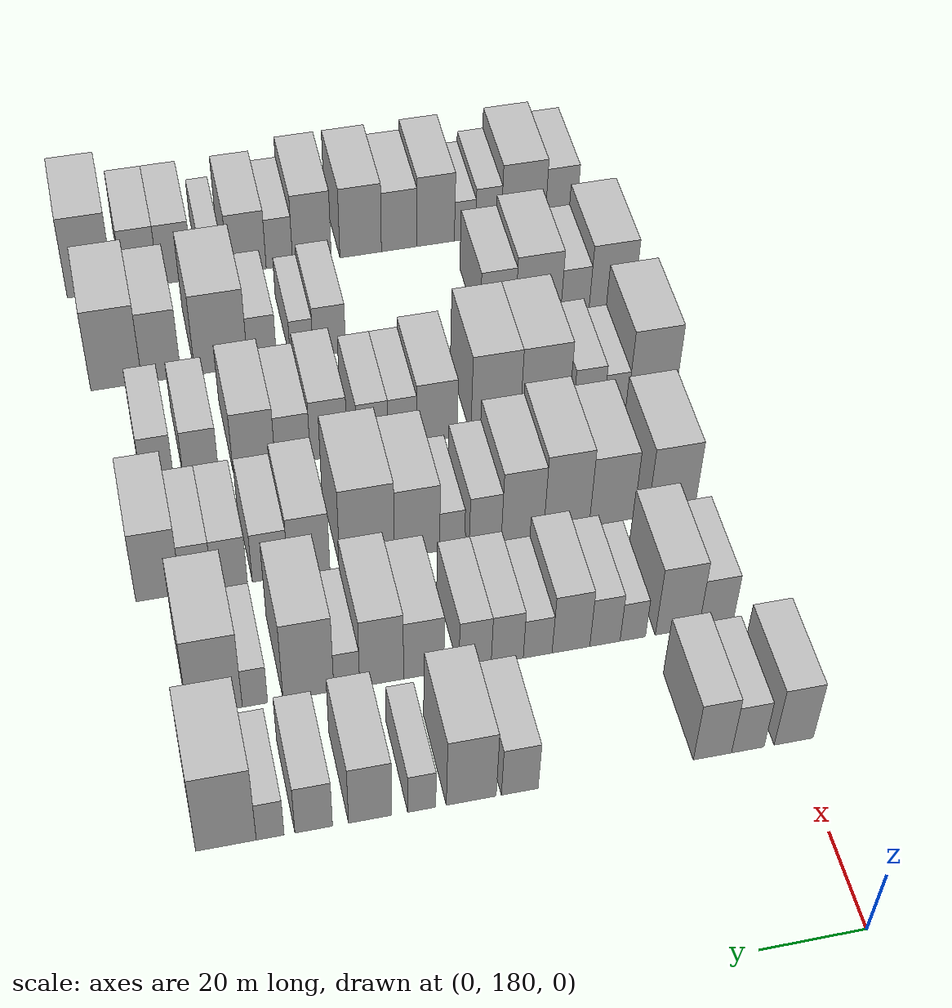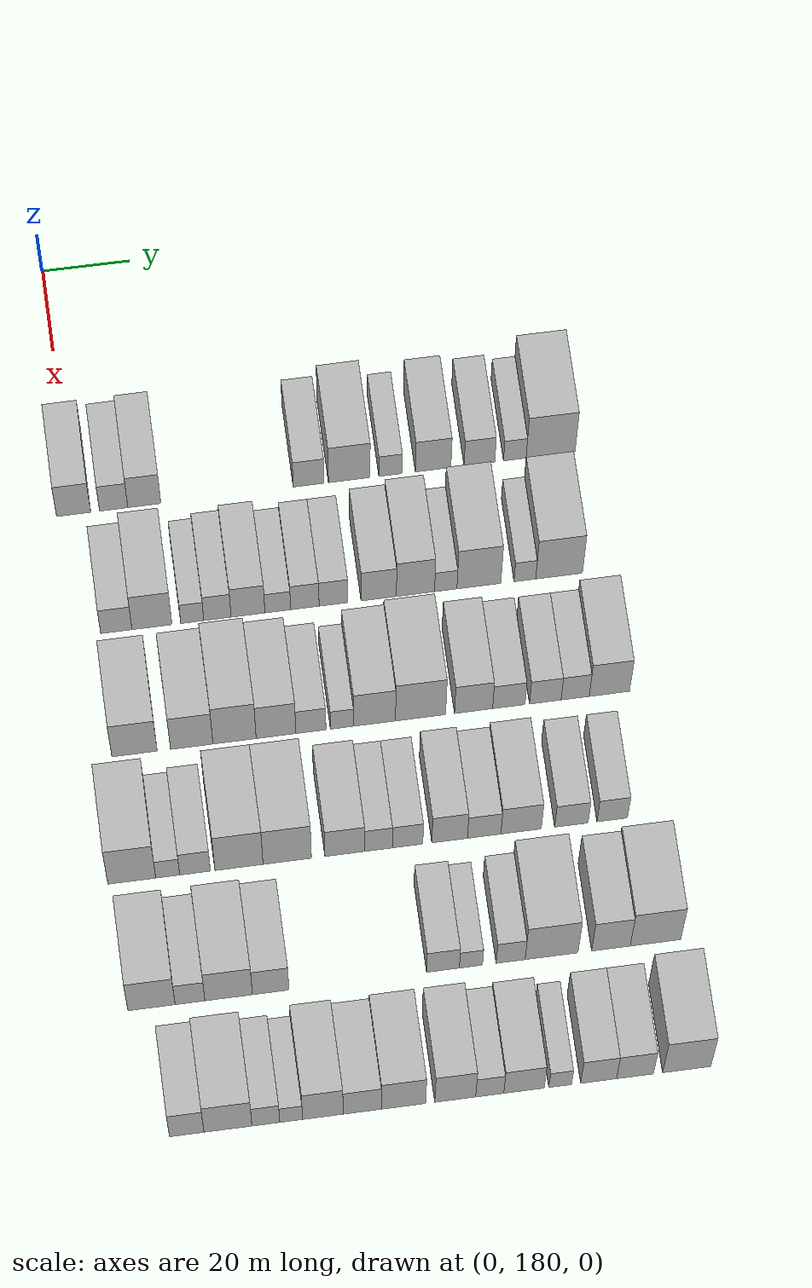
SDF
<sdf version="1.6">
 <world name="default">
  <model name="building_70">
   <static>1</static>
   <pose>50.0000 180.2562 0 0.000000 0.000000 0.000000</pose>
   <link name="link">
    <pose>0 0 9.00 0 0 0</pose>
    <collision name="collision"><geometry><box><size>20.0000 7.7095 18.0000</size></box></geometry></collision>
    <visual name="visual">
     <cast_shadows>0</cast_shadows>
     <geometry><box><size>20.0000 7.7095 18.0000</size></box></geometry>
     <material>
      <script>
       <uri>model://HANNAS_wall/materials/scripts</uri>
       <uri>model://HANNAS_wall/materials/textures</uri>
       <name>vrc/HANNAS_wall</name>
      </script>
     </material>
    </visual>
   </link>
  </model>
  <model name="building_71">
   <static>1</static>
   <pose>50.0000 189.3068 0 0.000000 0.000000 0.000000</pose>
   <link name="link">
    <pose>0 0 7.50 0 0 0</pose>
    <collision name="collision"><geometry><box><size>20.0000 6.3916 15.0000</size></box></geometry></collision>
    <visual name="visual">
     <cast_shadows>0</cast_shadows>
     <geometry><box><size>20.0000 6.3916 15.0000</size></box></geometry>
     <material>
      <script>
       <uri>model://HANNAS_wall/materials/scripts</uri>
       <uri>model://HANNAS_wall/materials/textures</uri>
       <name>vrc/HANNAS_wall</name>
      </script>
     </material>
    </visual>
   </link>
  </model>
  <model name="building_72">
   <static>1</static>
   <pose>50.0000 196.2367 0 0.000000 0.000000 0.000000</pose>
   <link name="link">
    <pose>0 0 9.00 0 0 0</pose>
    <collision name="collision"><geometry><box><size>20.0000 7.4682 18.0000</size></box></geometry></collision>
    <visual name="visual">
     <cast_shadows>0</cast_shadows>
     <geometry><box><size>20.0000 7.4682 18.0000</size></box></geometry>
     <material>
      <script>
       <uri>model://HANNAS_wall/materials/scripts</uri>
       <uri>model://HANNAS_wall/materials/textures</uri>
       <name>vrc/HANNAS_wall</name>
      </script>
     </material>
    </visual>
   </link>
  </model>
  <model name="building_73">
   <static>1</static>
   <pose>50.0000 233.4830 0 0.000000 0.000000 0.000000</pose>
   <link name="link">
    <pose>0 0 7.50 0 0 0</pose>
    <collision name="collision"><geometry><box><size>20.0000 7.0081 15.0000</size></box></geometry></collision>
    <visual name="visual">
     <cast_shadows>0</cast_shadows>
     <geometry><box><size>20.0000 7.0081 15.0000</size></box></geometry>
     <material>
      <script>
       <uri>model://HANNAS_wall/materials/scripts</uri>
       <uri>model://HANNAS_wall/materials/textures</uri>
       <name>vrc/HANNAS_wall</name>
      </script>
     </material>
    </visual>
   </link>
  </model>
  <model name="building_74">
   <static>1</static>
   <pose>50.0000 242.7147 0 0.000000 0.000000 0.000000</pose>
   <link name="link">
    <pose>0 0 10.50 0 0 0</pose>
    <collision name="collision"><geometry><box><size>20.0000 9.4552 21.0000</size></box></geometry></collision>
    <visual name="visual">
     <cast_shadows>0</cast_shadows>
     <geometry><box><size>20.0000 9.4552 21.0000</size></box></geometry>
     <material>
      <script>
       <uri>model://HANNAS_wall/materials/scripts</uri>
       <uri>model://HANNAS_wall/materials/textures</uri>
       <name>vrc/HANNAS_wall</name>
      </script>
     </material>
    </visual>
   </link>
  </model>
  <model name="building_75">
   <static>1</static>
   <pose>50.0000 252.0832 0 0.000000 0.000000 0.000000</pose>
   <link name="link">
    <pose>0 0 6.00 0 0 0</pose>
    <collision name="collision"><geometry><box><size>20.0000 5.2818 12.0000</size></box></geometry></collision>
    <visual name="visual">
     <cast_shadows>0</cast_shadows>
     <geometry><box><size>20.0000 5.2818 12.0000</size></box></geometry>
     <material>
      <script>
       <uri>model://HANNAS_wall/materials/scripts</uri>
       <uri>model://HANNAS_wall/materials/textures</uri>
       <name>vrc/HANNAS_wall</name>
      </script>
     </material>
    </visual>
   </link>
  </model>
  <model name="building_76">
   <static>1</static>
   <pose>50.0000 261.7618 0 0.000000 0.000000 0.000000</pose>
   <link name="link">
    <pose>0 0 9.00 0 0 0</pose>
    <collision name="collision"><geometry><box><size>20.0000 8.0754 18.0000</size></box></geometry></collision>
    <visual name="visual">
     <cast_shadows>0</cast_shadows>
     <geometry><box><size>20.0000 8.0754 18.0000</size></box></geometry>
     <material>
      <script>
       <uri>model://HANNAS_wall/materials/scripts</uri>
       <uri>model://HANNAS_wall/materials/textures</uri>
       <name>vrc/HANNAS_wall</name>
      </script>
     </material>
    </visual>
   </link>
  </model>
  <model name="building_77">
   <static>1</static>
   <pose>50.0000 272.2956 0 0.000000 0.000000 0.000000</pose>
   <link name="link">
    <pose>0 0 7.50 0 0 0</pose>
    <collision name="collision"><geometry><box><size>20.0000 6.9923 15.0000</size></box></geometry></collision>
    <visual name="visual">
     <cast_shadows>0</cast_shadows>
     <geometry><box><size>20.0000 6.9923 15.0000</size></box></geometry>
     <material>
      <script>
       <uri>model://HANNAS_wall/materials/scripts</uri>
       <uri>model://HANNAS_wall/materials/textures</uri>
       <name>vrc/HANNAS_wall</name>
      </script>
     </material>
    </visual>
   </link>
  </model>
  <model name="building_78">
   <static>1</static>
   <pose>50.0000 280.3612 0 0.000000 0.000000 0.000000</pose>
   <link name="link">
    <pose>0 0 6.00 0 0 0</pose>
    <collision name="collision"><geometry><box><size>20.0000 5.1389 12.0000</size></box></geometry></collision>
    <visual name="visual">
     <cast_shadows>0</cast_shadows>
     <geometry><box><size>20.0000 5.1389 12.0000</size></box></geometry>
     <material>
      <script>
       <uri>model://HANNAS_wall/materials/scripts</uri>
       <uri>model://HANNAS_wall/materials/textures</uri>
       <name>vrc/HANNAS_wall</name>
      </script>
     </material>
    </visual>
   </link>
  </model>
  <model name="building_79">
   <static>1</static>
   <pose>50.0000 288.5059 0 0.000000 0.000000 0.000000</pose>
   <link name="link">
    <pose>0 0 12.00 0 0 0</pose>
    <collision name="collision"><geometry><box><size>20.0000 11.1505 24.0000</size></box></geometry></collision>
    <visual name="visual">
     <cast_shadows>0</cast_shadows>
     <geometry><box><size>20.0000 11.1505 24.0000</size></box></geometry>
     <material>
      <script>
       <uri>model://HANNAS_wall/materials/scripts</uri>
       <uri>model://HANNAS_wall/materials/textures</uri>
       <name>vrc/HANNAS_wall</name>
      </script>
     </material>
    </visual>
   </link>
  </model>
  <model name="building_181">
   <static>1</static>
   <pose>79.0000 186.5486 0 0.000000 0.000000 0.000000</pose>
   <link name="link">
    <pose>0 0 7.50 0 0 0</pose>
    <collision name="collision"><geometry><box><size>20.0000 7.0161 15.0000</size></box></geometry></collision>
    <visual name="visual">
     <cast_shadows>0</cast_shadows>
     <geometry><box><size>20.0000 7.0161 15.0000</size></box></geometry>
     <material>
      <script>
       <uri>model://HANNAS_wall/materials/scripts</uri>
       <uri>model://HANNAS_wall/materials/textures</uri>
       <name>vrc/HANNAS_wall</name>
      </script>
     </material>
    </visual>
   </link>
  </model>
  <model name="building_182">
   <static>1</static>
   <pose>79.0000 194.5287 0 0.000000 0.000000 0.000000</pose>
   <link name="link">
    <pose>0 0 10.50 0 0 0</pose>
    <collision name="collision"><geometry><box><size>20.0000 8.9441 21.0000</size></box></geometry></collision>
    <visual name="visual">
     <cast_shadows>0</cast_shadows>
     <geometry><box><size>20.0000 8.9441 21.0000</size></box></geometry>
     <material>
      <script>
       <uri>model://HANNAS_wall/materials/scripts</uri>
       <uri>model://HANNAS_wall/materials/textures</uri>
       <name>vrc/HANNAS_wall</name>
      </script>
     </material>
    </visual>
   </link>
  </model>
  <model name="building_183">
   <static>1</static>
   <pose>79.0000 203.5871 0 0.000000 0.000000 0.000000</pose>
   <link name="link">
    <pose>0 0 6.00 0 0 0</pose>
    <collision name="collision"><geometry><box><size>20.0000 5.1728 12.0000</size></box></geometry></collision>
    <visual name="visual">
     <cast_shadows>0</cast_shadows>
     <geometry><box><size>20.0000 5.1728 12.0000</size></box></geometry>
     <material>
      <script>
       <uri>model://HANNAS_wall/materials/scripts</uri>
       <uri>model://HANNAS_wall/materials/textures</uri>
       <name>vrc/HANNAS_wall</name>
      </script>
     </material>
    </visual>
   </link>
  </model>
  <model name="building_184">
   <static>1</static>
   <pose>79.0000 209.2346 0 0.000000 0.000000 0.000000</pose>
   <link name="link">
    <pose>0 0 7.50 0 0 0</pose>
    <collision name="collision"><geometry><box><size>20.0000 6.1221 15.0000</size></box></geometry></collision>
    <visual name="visual">
     <cast_shadows>0</cast_shadows>
     <geometry><box><size>20.0000 6.1221 15.0000</size></box></geometry>
     <material>
      <script>
       <uri>model://HANNAS_wall/materials/scripts</uri>
       <uri>model://HANNAS_wall/materials/textures</uri>
       <name>vrc/HANNAS_wall</name>
      </script>
     </material>
    </visual>
   </link>
  </model>
  <model name="building_185">
   <static>1</static>
   <pose>79.0000 216.0967 0 0.000000 0.000000 0.000000</pose>
   <link name="link">
    <pose>0 0 9.00 0 0 0</pose>
    <collision name="collision"><geometry><box><size>20.0000 7.6021 18.0000</size></box></geometry></collision>
    <visual name="visual">
     <cast_shadows>0</cast_shadows>
     <geometry><box><size>20.0000 7.6021 18.0000</size></box></geometry>
     <material>
      <script>
       <uri>model://HANNAS_wall/materials/scripts</uri>
       <uri>model://HANNAS_wall/materials/textures</uri>
       <name>vrc/HANNAS_wall</name>
      </script>
     </material>
    </visual>
   </link>
  </model>
  <model name="building_186">
   <static>1</static>
   <pose>79.0000 222.7918 0 0.000000 0.000000 0.000000</pose>
   <link name="link">
    <pose>0 0 6.00 0 0 0</pose>
    <collision name="collision"><geometry><box><size>20.0000 5.7882 12.0000</size></box></geometry></collision>
    <visual name="visual">
     <cast_shadows>0</cast_shadows>
     <geometry><box><size>20.0000 5.7882 12.0000</size></box></geometry>
     <material>
      <script>
       <uri>model://HANNAS_wall/materials/scripts</uri>
       <uri>model://HANNAS_wall/materials/textures</uri>
       <name>vrc/HANNAS_wall</name>
      </script>
     </material>
    </visual>
   </link>
  </model>
  <model name="building_187">
   <static>1</static>
   <pose>79.0000 228.8914 0 0.000000 0.000000 0.000000</pose>
   <link name="link">
    <pose>0 0 7.50 0 0 0</pose>
    <collision name="collision"><geometry><box><size>20.0000 6.4110 15.0000</size></box></geometry></collision>
    <visual name="visual">
     <cast_shadows>0</cast_shadows>
     <geometry><box><size>20.0000 6.4110 15.0000</size></box></geometry>
     <material>
      <script>
       <uri>model://HANNAS_wall/materials/scripts</uri>
       <uri>model://HANNAS_wall/materials/textures</uri>
       <name>vrc/HANNAS_wall</name>
      </script>
     </material>
    </visual>
   </link>
  </model>
  <model name="building_188">
   <static>1</static>
   <pose>79.0000 235.3217 0 0.000000 0.000000 0.000000</pose>
   <link name="link">
    <pose>0 0 7.50 0 0 0</pose>
    <collision name="collision"><geometry><box><size>20.0000 6.4496 15.0000</size></box></geometry></collision>
    <visual name="visual">
     <cast_shadows>0</cast_shadows>
     <geometry><box><size>20.0000 6.4496 15.0000</size></box></geometry>
     <material>
      <script>
       <uri>model://HANNAS_wall/materials/scripts</uri>
       <uri>model://HANNAS_wall/materials/textures</uri>
       <name>vrc/HANNAS_wall</name>
      </script>
     </material>
    </visual>
   </link>
  </model>
  <model name="building_189">
   <static>1</static>
   <pose>79.0000 245.5185 0 0.000000 0.000000 0.000000</pose>
   <link name="link">
    <pose>0 0 9.00 0 0 0</pose>
    <collision name="collision"><geometry><box><size>20.0000 7.9440 18.0000</size></box></geometry></collision>
    <visual name="visual">
     <cast_shadows>0</cast_shadows>
     <geometry><box><size>20.0000 7.9440 18.0000</size></box></geometry>
     <material>
      <script>
       <uri>model://HANNAS_wall/materials/scripts</uri>
       <uri>model://HANNAS_wall/materials/textures</uri>
       <name>vrc/HANNAS_wall</name>
      </script>
     </material>
    </visual>
   </link>
  </model>
  <model name="building_190">
   <static>1</static>
   <pose>79.0000 253.7949 0 0.000000 0.000000 0.000000</pose>
   <link name="link">
    <pose>0 0 10.50 0 0 0</pose>
    <collision name="collision"><geometry><box><size>20.0000 8.6087 21.0000</size></box></geometry></collision>
    <visual name="visual">
     <cast_shadows>0</cast_shadows>
     <geometry><box><size>20.0000 8.6087 21.0000</size></box></geometry>
     <material>
      <script>
       <uri>model://HANNAS_wall/materials/scripts</uri>
       <uri>model://HANNAS_wall/materials/textures</uri>
       <name>vrc/HANNAS_wall</name>
      </script>
     </material>
    </visual>
   </link>
  </model>
  <model name="building_191">
   <static>1</static>
   <pose>79.0000 260.6229 0 0.000000 0.000000 0.000000</pose>
   <link name="link">
    <pose>0 0 6.00 0 0 0</pose>
    <collision name="collision"><geometry><box><size>20.0000 5.0473 12.0000</size></box></geometry></collision>
    <visual name="visual">
     <cast_shadows>0</cast_shadows>
     <geometry><box><size>20.0000 5.0473 12.0000</size></box></geometry>
     <material>
      <script>
       <uri>model://HANNAS_wall/materials/scripts</uri>
       <uri>model://HANNAS_wall/materials/textures</uri>
       <name>vrc/HANNAS_wall</name>
      </script>
     </material>
    </visual>
   </link>
  </model>
  <model name="building_192">
   <static>1</static>
   <pose>79.0000 268.0905 0 0.000000 0.000000 0.000000</pose>
   <link name="link">
    <pose>0 0 12.00 0 0 0</pose>
    <collision name="collision"><geometry><box><size>20.0000 9.8880 24.0000</size></box></geometry></collision>
    <visual name="visual">
     <cast_shadows>0</cast_shadows>
     <geometry><box><size>20.0000 9.8880 24.0000</size></box></geometry>
     <material>
      <script>
       <uri>model://HANNAS_wall/materials/scripts</uri>
       <uri>model://HANNAS_wall/materials/textures</uri>
       <name>vrc/HANNAS_wall</name>
      </script>
     </material>
    </visual>
   </link>
  </model>
  <model name="building_193">
   <static>1</static>
   <pose>79.0000 278.4834 0 0.000000 0.000000 0.000000</pose>
   <link name="link">
    <pose>0 0 6.00 0 0 0</pose>
    <collision name="collision"><geometry><box><size>20.0000 4.8978 12.0000</size></box></geometry></collision>
    <visual name="visual">
     <cast_shadows>0</cast_shadows>
     <geometry><box><size>20.0000 4.8978 12.0000</size></box></geometry>
     <material>
      <script>
       <uri>model://HANNAS_wall/materials/scripts</uri>
       <uri>model://HANNAS_wall/materials/textures</uri>
       <name>vrc/HANNAS_wall</name>
      </script>
     </material>
    </visual>
   </link>
  </model>
  <model name="building_194">
   <static>1</static>
   <pose>79.0000 286.2061 0 0.000000 0.000000 0.000000</pose>
   <link name="link">
    <pose>0 0 12.00 0 0 0</pose>
    <collision name="collision"><geometry><box><size>20.0000 10.5475 24.0000</size></box></geometry></collision>
    <visual name="visual">
     <cast_shadows>0</cast_shadows>
     <geometry><box><size>20.0000 10.5475 24.0000</size></box></geometry>
     <material>
      <script>
       <uri>model://HANNAS_wall/materials/scripts</uri>
       <uri>model://HANNAS_wall/materials/textures</uri>
       <name>vrc/HANNAS_wall</name>
      </script>
     </material>
    </visual>
   </link>
  </model>
  <model name="building_300">
   <static>1</static>
   <pose>108.0000 187.2065 0 0.000000 0.000000 0.000000</pose>
   <link name="link">
    <pose>0 0 10.50 0 0 0</pose>
    <collision name="collision"><geometry><box><size>20.0000 10.0600 21.0000</size></box></geometry></collision>
    <visual name="visual">
     <cast_shadows>0</cast_shadows>
     <geometry><box><size>20.0000 10.0600 21.0000</size></box></geometry>
     <material>
      <script>
       <uri>model://HANNAS_wall/materials/scripts</uri>
       <uri>model://HANNAS_wall/materials/textures</uri>
       <name>vrc/HANNAS_wall</name>
      </script>
     </material>
    </visual>
   </link>
  </model>
  <model name="building_301">
   <static>1</static>
   <pose>108.0000 199.9511 0 0.000000 0.000000 0.000000</pose>
   <link name="link">
    <pose>0 0 10.50 0 0 0</pose>
    <collision name="collision"><geometry><box><size>20.0000 9.4292 21.0000</size></box></geometry></collision>
    <visual name="visual">
     <cast_shadows>0</cast_shadows>
     <geometry><box><size>20.0000 9.4292 21.0000</size></box></geometry>
     <material>
      <script>
       <uri>model://HANNAS_wall/materials/scripts</uri>
       <uri>model://HANNAS_wall/materials/textures</uri>
       <name>vrc/HANNAS_wall</name>
      </script>
     </material>
    </visual>
   </link>
  </model>
  <model name="building_302">
   <static>1</static>
   <pose>108.0000 209.4750 0 0.000000 0.000000 0.000000</pose>
   <link name="link">
    <pose>0 0 12.00 0 0 0</pose>
    <collision name="collision"><geometry><box><size>20.0000 9.6187 24.0000</size></box></geometry></collision>
    <visual name="visual">
     <cast_shadows>0</cast_shadows>
     <geometry><box><size>20.0000 9.6187 24.0000</size></box></geometry>
     <material>
      <script>
       <uri>model://HANNAS_wall/materials/scripts</uri>
       <uri>model://HANNAS_wall/materials/textures</uri>
       <name>vrc/HANNAS_wall</name>
      </script>
     </material>
    </visual>
   </link>
  </model>
  <model name="building_303">
   <static>1</static>
   <pose>108.0000 218.7165 0 0.000000 0.000000 0.000000</pose>
   <link name="link">
    <pose>0 0 10.50 0 0 0</pose>
    <collision name="collision"><geometry><box><size>20.0000 8.8643 21.0000</size></box></geometry></collision>
    <visual name="visual">
     <cast_shadows>0</cast_shadows>
     <geometry><box><size>20.0000 8.8643 21.0000</size></box></geometry>
     <material>
      <script>
       <uri>model://HANNAS_wall/materials/scripts</uri>
       <uri>model://HANNAS_wall/materials/textures</uri>
       <name>vrc/HANNAS_wall</name>
      </script>
     </material>
    </visual>
   </link>
  </model>
  <model name="building_304">
   <static>1</static>
   <pose>108.0000 226.4999 0 0.000000 0.000000 0.000000</pose>
   <link name="link">
    <pose>0 0 7.50 0 0 0</pose>
    <collision name="collision"><geometry><box><size>20.0000 6.7025 15.0000</size></box></geometry></collision>
    <visual name="visual">
     <cast_shadows>0</cast_shadows>
     <geometry><box><size>20.0000 6.7025 15.0000</size></box></geometry>
     <material>
      <script>
       <uri>model://HANNAS_wall/materials/scripts</uri>
       <uri>model://HANNAS_wall/materials/textures</uri>
       <name>vrc/HANNAS_wall</name>
      </script>
     </material>
    </visual>
   </link>
  </model>
  <model name="building_305">
   <static>1</static>
   <pose>108.0000 233.4366 0 0.000000 0.000000 0.000000</pose>
   <link name="link">
    <pose>0 0 6.00 0 0 0</pose>
    <collision name="collision"><geometry><box><size>20.0000 5.1707 12.0000</size></box></geometry></collision>
    <visual name="visual">
     <cast_shadows>0</cast_shadows>
     <geometry><box><size>20.0000 5.1707 12.0000</size></box></geometry>
     <material>
      <script>
       <uri>model://HANNAS_wall/materials/scripts</uri>
       <uri>model://HANNAS_wall/materials/textures</uri>
       <name>vrc/HANNAS_wall</name>
      </script>
     </material>
    </visual>
   </link>
  </model>
  <model name="building_306">
   <static>1</static>
   <pose>108.0000 240.6991 0 0.000000 0.000000 0.000000</pose>
   <link name="link">
    <pose>0 0 10.50 0 0 0</pose>
    <collision name="collision"><geometry><box><size>20.0000 9.3544 21.0000</size></box></geometry></collision>
    <visual name="visual">
     <cast_shadows>0</cast_shadows>
     <geometry><box><size>20.0000 9.3544 21.0000</size></box></geometry>
     <material>
      <script>
       <uri>model://HANNAS_wall/materials/scripts</uri>
       <uri>model://HANNAS_wall/materials/textures</uri>
       <name>vrc/HANNAS_wall</name>
      </script>
     </material>
    </visual>
   </link>
  </model>
  <model name="building_307">
   <static>1</static>
   <pose>108.0000 250.9731 0 0.000000 0.000000 0.000000</pose>
   <link name="link">
    <pose>0 0 12.00 0 0 0</pose>
    <collision name="collision"><geometry><box><size>20.0000 11.1936 24.0000</size></box></geometry></collision>
    <visual name="visual">
     <cast_shadows>0</cast_shadows>
     <geometry><box><size>20.0000 11.1936 24.0000</size></box></geometry>
     <material>
      <script>
       <uri>model://HANNAS_wall/materials/scripts</uri>
       <uri>model://HANNAS_wall/materials/textures</uri>
       <name>vrc/HANNAS_wall</name>
      </script>
     </material>
    </visual>
   </link>
  </model>
  <model name="building_308">
   <static>1</static>
   <pose>108.0000 262.8275 0 0.000000 0.000000 0.000000</pose>
   <link name="link">
    <pose>0 0 9.00 0 0 0</pose>
    <collision name="collision"><geometry><box><size>20.0000 8.5152 18.0000</size></box></geometry></collision>
    <visual name="visual">
     <cast_shadows>0</cast_shadows>
     <geometry><box><size>20.0000 8.5152 18.0000</size></box></geometry>
     <material>
      <script>
       <uri>model://HANNAS_wall/materials/scripts</uri>
       <uri>model://HANNAS_wall/materials/textures</uri>
       <name>vrc/HANNAS_wall</name>
      </script>
     </material>
    </visual>
   </link>
  </model>
  <model name="building_309">
   <static>1</static>
   <pose>108.0000 270.7151 0 0.000000 0.000000 0.000000</pose>
   <link name="link">
    <pose>0 0 7.50 0 0 0</pose>
    <collision name="collision"><geometry><box><size>20.0000 7.2600 15.0000</size></box></geometry></collision>
    <visual name="visual">
     <cast_shadows>0</cast_shadows>
     <geometry><box><size>20.0000 7.2600 15.0000</size></box></geometry>
     <material>
      <script>
       <uri>model://HANNAS_wall/materials/scripts</uri>
       <uri>model://HANNAS_wall/materials/textures</uri>
       <name>vrc/HANNAS_wall</name>
      </script>
     </material>
    </visual>
   </link>
  </model>
  <model name="building_310">
   <static>1</static>
   <pose>108.0000 278.8761 0 0.000000 0.000000 0.000000</pose>
   <link name="link">
    <pose>0 0 7.50 0 0 0</pose>
    <collision name="collision"><geometry><box><size>20.0000 7.0619 15.0000</size></box></geometry></collision>
    <visual name="visual">
     <cast_shadows>0</cast_shadows>
     <geometry><box><size>20.0000 7.0619 15.0000</size></box></geometry>
     <material>
      <script>
       <uri>model://HANNAS_wall/materials/scripts</uri>
       <uri>model://HANNAS_wall/materials/textures</uri>
       <name>vrc/HANNAS_wall</name>
      </script>
     </material>
    </visual>
   </link>
  </model>
  <model name="building_311">
   <static>1</static>
   <pose>108.0000 285.5666 0 0.000000 0.000000 0.000000</pose>
   <link name="link">
    <pose>0 0 7.50 0 0 0</pose>
    <collision name="collision"><geometry><box><size>20.0000 6.3191 15.0000</size></box></geometry></collision>
    <visual name="visual">
     <cast_shadows>0</cast_shadows>
     <geometry><box><size>20.0000 6.3191 15.0000</size></box></geometry>
     <material>
      <script>
       <uri>model://HANNAS_wall/materials/scripts</uri>
       <uri>model://HANNAS_wall/materials/textures</uri>
       <name>vrc/HANNAS_wall</name>
      </script>
     </material>
    </visual>
   </link>
  </model>
  <model name="building_312">
   <static>1</static>
   <pose>108.0000 293.2436 0 0.000000 0.000000 0.000000</pose>
   <link name="link">
    <pose>0 0 10.50 0 0 0</pose>
    <collision name="collision"><geometry><box><size>20.0000 9.0348 21.0000</size></box></geometry></collision>
    <visual name="visual">
     <cast_shadows>0</cast_shadows>
     <geometry><box><size>20.0000 9.0348 21.0000</size></box></geometry>
     <material>
      <script>
       <uri>model://HANNAS_wall/materials/scripts</uri>
       <uri>model://HANNAS_wall/materials/textures</uri>
       <name>vrc/HANNAS_wall</name>
      </script>
     </material>
    </visual>
   </link>
  </model>
  <model name="building_412">
   <static>1</static>
   <pose>137.0000 183.2119 0 0.000000 0.000000 0.000000</pose>
   <link name="link">
    <pose>0 0 12.00 0 0 0</pose>
    <collision name="collision"><geometry><box><size>20.0000 10.5441 24.0000</size></box></geometry></collision>
    <visual name="visual">
     <cast_shadows>0</cast_shadows>
     <geometry><box><size>20.0000 10.5441 24.0000</size></box></geometry>
     <material>
      <script>
       <uri>model://HANNAS_wall/materials/scripts</uri>
       <uri>model://HANNAS_wall/materials/textures</uri>
       <name>vrc/HANNAS_wall</name>
      </script>
     </material>
    </visual>
   </link>
  </model>
  <model name="building_413">
   <static>1</static>
   <pose>137.0000 191.1245 0 0.000000 0.000000 0.000000</pose>
   <link name="link">
    <pose>0 0 6.00 0 0 0</pose>
    <collision name="collision"><geometry><box><size>20.0000 5.2811 12.0000</size></box></geometry></collision>
    <visual name="visual">
     <cast_shadows>0</cast_shadows>
     <geometry><box><size>20.0000 5.2811 12.0000</size></box></geometry>
     <material>
      <script>
       <uri>model://HANNAS_wall/materials/scripts</uri>
       <uri>model://HANNAS_wall/materials/textures</uri>
       <name>vrc/HANNAS_wall</name>
      </script>
     </material>
    </visual>
   </link>
  </model>
  <model name="building_414">
   <static>1</static>
   <pose>137.0000 197.1531 0 0.000000 0.000000 0.000000</pose>
   <link name="link">
    <pose>0 0 7.50 0 0 0</pose>
    <collision name="collision"><geometry><box><size>20.0000 6.7760 15.0000</size></box></geometry></collision>
    <visual name="visual">
     <cast_shadows>0</cast_shadows>
     <geometry><box><size>20.0000 6.7760 15.0000</size></box></geometry>
     <material>
      <script>
       <uri>model://HANNAS_wall/materials/scripts</uri>
       <uri>model://HANNAS_wall/materials/textures</uri>
       <name>vrc/HANNAS_wall</name>
      </script>
     </material>
    </visual>
   </link>
  </model>
  <model name="building_415">
   <static>1</static>
   <pose>137.0000 206.8526 0 0.000000 0.000000 0.000000</pose>
   <link name="link">
    <pose>0 0 12.00 0 0 0</pose>
    <collision name="collision"><geometry><box><size>20.0000 10.6231 24.0000</size></box></geometry></collision>
    <visual name="visual">
     <cast_shadows>0</cast_shadows>
     <geometry><box><size>20.0000 10.6231 24.0000</size></box></geometry>
     <material>
      <script>
       <uri>model://HANNAS_wall/materials/scripts</uri>
       <uri>model://HANNAS_wall/materials/textures</uri>
       <name>vrc/HANNAS_wall</name>
      </script>
     </material>
    </visual>
   </link>
  </model>
  <model name="building_416">
   <static>1</static>
   <pose>137.0000 217.5072 0 0.000000 0.000000 0.000000</pose>
   <link name="link">
    <pose>0 0 12.00 0 0 0</pose>
    <collision name="collision"><geometry><box><size>20.0000 10.6861 24.0000</size></box></geometry></collision>
    <visual name="visual">
     <cast_shadows>0</cast_shadows>
     <geometry><box><size>20.0000 10.6861 24.0000</size></box></geometry>
     <material>
      <script>
       <uri>model://HANNAS_wall/materials/scripts</uri>
       <uri>model://HANNAS_wall/materials/textures</uri>
       <name>vrc/HANNAS_wall</name>
      </script>
     </material>
    </visual>
   </link>
  </model>
  <model name="building_417">
   <static>1</static>
   <pose>137.0000 230.2486 0 0.000000 0.000000 0.000000</pose>
   <link name="link">
    <pose>0 0 9.00 0 0 0</pose>
    <collision name="collision"><geometry><box><size>20.0000 8.7966 18.0000</size></box></geometry></collision>
    <visual name="visual">
     <cast_shadows>0</cast_shadows>
     <geometry><box><size>20.0000 8.7966 18.0000</size></box></geometry>
     <material>
      <script>
       <uri>model://HANNAS_wall/materials/scripts</uri>
       <uri>model://HANNAS_wall/materials/textures</uri>
       <name>vrc/HANNAS_wall</name>
      </script>
     </material>
    </visual>
   </link>
  </model>
  <model name="building_418">
   <static>1</static>
   <pose>137.0000 237.7038 0 0.000000 0.000000 0.000000</pose>
   <link name="link">
    <pose>0 0 7.50 0 0 0</pose>
    <collision name="collision"><geometry><box><size>20.0000 6.1139 15.0000</size></box></geometry></collision>
    <visual name="visual">
     <cast_shadows>0</cast_shadows>
     <geometry><box><size>20.0000 6.1139 15.0000</size></box></geometry>
     <material>
      <script>
       <uri>model://HANNAS_wall/materials/scripts</uri>
       <uri>model://HANNAS_wall/materials/textures</uri>
       <name>vrc/HANNAS_wall</name>
      </script>
     </material>
    </visual>
   </link>
  </model>
  <model name="building_419">
   <static>1</static>
   <pose>137.0000 244.1325 0 0.000000 0.000000 0.000000</pose>
   <link name="link">
    <pose>0 0 7.50 0 0 0</pose>
    <collision name="collision"><geometry><box><size>20.0000 6.7436 15.0000</size></box></geometry></collision>
    <visual name="visual">
     <cast_shadows>0</cast_shadows>
     <geometry><box><size>20.0000 6.7436 15.0000</size></box></geometry>
     <material>
      <script>
       <uri>model://HANNAS_wall/materials/scripts</uri>
       <uri>model://HANNAS_wall/materials/textures</uri>
       <name>vrc/HANNAS_wall</name>
      </script>
     </material>
    </visual>
   </link>
  </model>
  <model name="building_420">
   <static>1</static>
   <pose>137.0000 253.4449 0 0.000000 0.000000 0.000000</pose>
   <link name="link">
    <pose>0 0 9.00 0 0 0</pose>
    <collision name="collision"><geometry><box><size>20.0000 7.8812 18.0000</size></box></geometry></collision>
    <visual name="visual">
     <cast_shadows>0</cast_shadows>
     <geometry><box><size>20.0000 7.8812 18.0000</size></box></geometry>
     <material>
      <script>
       <uri>model://HANNAS_wall/materials/scripts</uri>
       <uri>model://HANNAS_wall/materials/textures</uri>
       <name>vrc/HANNAS_wall</name>
      </script>
     </material>
    </visual>
   </link>
  </model>
  <model name="building_421">
   <static>1</static>
   <pose>137.0000 261.1084 0 0.000000 0.000000 0.000000</pose>
   <link name="link">
    <pose>0 0 7.50 0 0 0</pose>
    <collision name="collision"><geometry><box><size>20.0000 7.4457 15.0000</size></box></geometry></collision>
    <visual name="visual">
     <cast_shadows>0</cast_shadows>
     <geometry><box><size>20.0000 7.4457 15.0000</size></box></geometry>
     <material>
      <script>
       <uri>model://HANNAS_wall/materials/scripts</uri>
       <uri>model://HANNAS_wall/materials/textures</uri>
       <name>vrc/HANNAS_wall</name>
      </script>
     </material>
    </visual>
   </link>
  </model>
  <model name="building_422">
   <static>1</static>
   <pose>137.0000 269.2971 0 0.000000 0.000000 0.000000</pose>
   <link name="link">
    <pose>0 0 9.00 0 0 0</pose>
    <collision name="collision"><geometry><box><size>20.0000 8.9318 18.0000</size></box></geometry></collision>
    <visual name="visual">
     <cast_shadows>0</cast_shadows>
     <geometry><box><size>20.0000 8.9318 18.0000</size></box></geometry>
     <material>
      <script>
       <uri>model://HANNAS_wall/materials/scripts</uri>
       <uri>model://HANNAS_wall/materials/textures</uri>
       <name>vrc/HANNAS_wall</name>
      </script>
     </material>
    </visual>
   </link>
  </model>
  <model name="building_423">
   <static>1</static>
   <pose>137.0000 280.4632 0 0.000000 0.000000 0.000000</pose>
   <link name="link">
    <pose>0 0 7.50 0 0 0</pose>
    <collision name="collision"><geometry><box><size>20.0000 7.4005 15.0000</size></box></geometry></collision>
    <visual name="visual">
     <cast_shadows>0</cast_shadows>
     <geometry><box><size>20.0000 7.4005 15.0000</size></box></geometry>
     <material>
      <script>
       <uri>model://HANNAS_wall/materials/scripts</uri>
       <uri>model://HANNAS_wall/materials/textures</uri>
       <name>vrc/HANNAS_wall</name>
      </script>
     </material>
    </visual>
   </link>
  </model>
  <model name="building_424">
   <static>1</static>
   <pose>137.0000 289.5529 0 0.000000 0.000000 0.000000</pose>
   <link name="link">
    <pose>0 0 7.50 0 0 0</pose>
    <collision name="collision"><geometry><box><size>20.0000 6.7789 15.0000</size></box></geometry></collision>
    <visual name="visual">
     <cast_shadows>0</cast_shadows>
     <geometry><box><size>20.0000 6.7789 15.0000</size></box></geometry>
     <material>
      <script>
       <uri>model://HANNAS_wall/materials/scripts</uri>
       <uri>model://HANNAS_wall/materials/textures</uri>
       <name>vrc/HANNAS_wall</name>
      </script>
     </material>
    </visual>
   </link>
  </model>
  <model name="building_520">
   <static>1</static>
   <pose>166.0000 184.1220 0 0.000000 0.000000 0.000000</pose>
   <link name="link">
    <pose>0 0 10.50 0 0 0</pose>
    <collision name="collision"><geometry><box><size>20.0000 10.3145 21.0000</size></box></geometry></collision>
    <visual name="visual">
     <cast_shadows>0</cast_shadows>
     <geometry><box><size>20.0000 10.3145 21.0000</size></box></geometry>
     <material>
      <script>
       <uri>model://HANNAS_wall/materials/scripts</uri>
       <uri>model://HANNAS_wall/materials/textures</uri>
       <name>vrc/HANNAS_wall</name>
      </script>
     </material>
    </visual>
   </link>
  </model>
  <model name="building_521">
   <static>1</static>
   <pose>166.0000 192.5302 0 0.000000 0.000000 0.000000</pose>
   <link name="link">
    <pose>0 0 7.50 0 0 0</pose>
    <collision name="collision"><geometry><box><size>20.0000 6.5018 15.0000</size></box></geometry></collision>
    <visual name="visual">
     <cast_shadows>0</cast_shadows>
     <geometry><box><size>20.0000 6.5018 15.0000</size></box></geometry>
     <material>
      <script>
       <uri>model://HANNAS_wall/materials/scripts</uri>
       <uri>model://HANNAS_wall/materials/textures</uri>
       <name>vrc/HANNAS_wall</name>
      </script>
     </material>
    </visual>
   </link>
  </model>
  <model name="building_522">
   <static>1</static>
   <pose>166.0000 200.9763 0 0.000000 0.000000 0.000000</pose>
   <link name="link">
    <pose>0 0 10.50 0 0 0</pose>
    <collision name="collision"><geometry><box><size>20.0000 10.3905 21.0000</size></box></geometry></collision>
    <visual name="visual">
     <cast_shadows>0</cast_shadows>
     <geometry><box><size>20.0000 10.3905 21.0000</size></box></geometry>
     <material>
      <script>
       <uri>model://HANNAS_wall/materials/scripts</uri>
       <uri>model://HANNAS_wall/materials/textures</uri>
       <name>vrc/HANNAS_wall</name>
      </script>
     </material>
    </visual>
   </link>
  </model>
  <model name="building_523">
   <static>1</static>
   <pose>166.0000 210.1645 0 0.000000 0.000000 0.000000</pose>
   <link name="link">
    <pose>0 0 9.00 0 0 0</pose>
    <collision name="collision"><geometry><box><size>20.0000 7.9859 18.0000</size></box></geometry></collision>
    <visual name="visual">
     <cast_shadows>0</cast_shadows>
     <geometry><box><size>20.0000 7.9859 18.0000</size></box></geometry>
     <material>
      <script>
       <uri>model://HANNAS_wall/materials/scripts</uri>
       <uri>model://HANNAS_wall/materials/textures</uri>
       <name>vrc/HANNAS_wall</name>
      </script>
     </material>
    </visual>
   </link>
  </model>
  <model name="building_524">
   <static>1</static>
   <pose>166.0000 247.9635 0 0.000000 0.000000 0.000000</pose>
   <link name="link">
    <pose>0 0 7.50 0 0 0</pose>
    <collision name="collision"><geometry><box><size>20.0000 7.2040 15.0000</size></box></geometry></collision>
    <visual name="visual">
     <cast_shadows>0</cast_shadows>
     <geometry><box><size>20.0000 7.2040 15.0000</size></box></geometry>
     <material>
      <script>
       <uri>model://HANNAS_wall/materials/scripts</uri>
       <uri>model://HANNAS_wall/materials/textures</uri>
       <name>vrc/HANNAS_wall</name>
      </script>
     </material>
    </visual>
   </link>
  </model>
  <model name="building_525">
   <static>1</static>
   <pose>166.0000 254.1075 0 0.000000 0.000000 0.000000</pose>
   <link name="link">
    <pose>0 0 6.00 0 0 0</pose>
    <collision name="collision"><geometry><box><size>20.0000 5.0840 12.0000</size></box></geometry></collision>
    <visual name="visual">
     <cast_shadows>0</cast_shadows>
     <geometry><box><size>20.0000 5.0840 12.0000</size></box></geometry>
     <material>
      <script>
       <uri>model://HANNAS_wall/materials/scripts</uri>
       <uri>model://HANNAS_wall/materials/textures</uri>
       <name>vrc/HANNAS_wall</name>
      </script>
     </material>
    </visual>
   </link>
  </model>
  <model name="building_526">
   <static>1</static>
   <pose>166.0000 262.8395 0 0.000000 0.000000 0.000000</pose>
   <link name="link">
    <pose>0 0 7.50 0 0 0</pose>
    <collision name="collision"><geometry><box><size>20.0000 6.3798 15.0000</size></box></geometry></collision>
    <visual name="visual">
     <cast_shadows>0</cast_shadows>
     <geometry><box><size>20.0000 6.3798 15.0000</size></box></geometry>
     <material>
      <script>
       <uri>model://HANNAS_wall/materials/scripts</uri>
       <uri>model://HANNAS_wall/materials/textures</uri>
       <name>vrc/HANNAS_wall</name>
      </script>
     </material>
    </visual>
   </link>
  </model>
  <model name="building_527">
   <static>1</static>
   <pose>166.0000 271.8470 0 0.000000 0.000000 0.000000</pose>
   <link name="link">
    <pose>0 0 12.00 0 0 0</pose>
    <collision name="collision"><geometry><box><size>20.0000 11.6353 24.0000</size></box></geometry></collision>
    <visual name="visual">
     <cast_shadows>0</cast_shadows>
     <geometry><box><size>20.0000 11.6353 24.0000</size></box></geometry>
     <material>
      <script>
       <uri>model://HANNAS_wall/materials/scripts</uri>
       <uri>model://HANNAS_wall/materials/textures</uri>
       <name>vrc/HANNAS_wall</name>
      </script>
     </material>
    </visual>
   </link>
  </model>
  <model name="building_528">
   <static>1</static>
   <pose>166.0000 284.9239 0 0.000000 0.000000 0.000000</pose>
   <link name="link">
    <pose>0 0 10.50 0 0 0</pose>
    <collision name="collision"><geometry><box><size>20.0000 8.5184 21.0000</size></box></geometry></collision>
    <visual name="visual">
     <cast_shadows>0</cast_shadows>
     <geometry><box><size>20.0000 8.5184 21.0000</size></box></geometry>
     <material>
      <script>
       <uri>model://HANNAS_wall/materials/scripts</uri>
       <uri>model://HANNAS_wall/materials/textures</uri>
       <name>vrc/HANNAS_wall</name>
      </script>
     </material>
    </visual>
   </link>
  </model>
  <model name="building_529">
   <static>1</static>
   <pose>166.0000 294.7502 0 0.000000 0.000000 0.000000</pose>
   <link name="link">
    <pose>0 0 12.00 0 0 0</pose>
    <collision name="collision"><geometry><box><size>20.0000 11.1343 24.0000</size></box></geometry></collision>
    <visual name="visual">
     <cast_shadows>0</cast_shadows>
     <geometry><box><size>20.0000 11.1343 24.0000</size></box></geometry>
     <material>
      <script>
       <uri>model://HANNAS_wall/materials/scripts</uri>
       <uri>model://HANNAS_wall/materials/textures</uri>
       <name>vrc/HANNAS_wall</name>
      </script>
     </material>
    </visual>
   </link>
  </model>
  <model name="building_629">
   <static>1</static>
   <pose>195.0000 188.2999 0 0.000000 0.000000 0.000000</pose>
   <link name="link">
    <pose>0 0 9.00 0 0 0</pose>
    <collision name="collision"><geometry><box><size>20.0000 7.4525 18.0000</size></box></geometry></collision>
    <visual name="visual">
     <cast_shadows>0</cast_shadows>
     <geometry><box><size>20.0000 7.4525 18.0000</size></box></geometry>
     <material>
      <script>
       <uri>model://HANNAS_wall/materials/scripts</uri>
       <uri>model://HANNAS_wall/materials/textures</uri>
       <name>vrc/HANNAS_wall</name>
      </script>
     </material>
    </visual>
   </link>
  </model>
  <model name="building_630">
   <static>1</static>
   <pose>195.0000 197.2286 0 0.000000 0.000000 0.000000</pose>
   <link name="link">
    <pose>0 0 10.50 0 0 0</pose>
    <collision name="collision"><geometry><box><size>20.0000 10.4050 21.0000</size></box></geometry></collision>
    <visual name="visual">
     <cast_shadows>0</cast_shadows>
     <geometry><box><size>20.0000 10.4050 21.0000</size></box></geometry>
     <material>
      <script>
       <uri>model://HANNAS_wall/materials/scripts</uri>
       <uri>model://HANNAS_wall/materials/textures</uri>
       <name>vrc/HANNAS_wall</name>
      </script>
     </material>
    </visual>
   </link>
  </model>
  <model name="building_631">
   <static>1</static>
   <pose>195.0000 205.4514 0 0.000000 0.000000 0.000000</pose>
   <link name="link">
    <pose>0 0 7.50 0 0 0</pose>
    <collision name="collision"><geometry><box><size>20.0000 6.0405 15.0000</size></box></geometry></collision>
    <visual name="visual">
     <cast_shadows>0</cast_shadows>
     <geometry><box><size>20.0000 6.0405 15.0000</size></box></geometry>
     <material>
      <script>
       <uri>model://HANNAS_wall/materials/scripts</uri>
       <uri>model://HANNAS_wall/materials/textures</uri>
       <name>vrc/HANNAS_wall</name>
      </script>
     </material>
    </visual>
   </link>
  </model>
  <model name="building_632">
   <static>1</static>
   <pose>195.0000 210.9471 0 0.000000 0.000000 0.000000</pose>
   <link name="link">
    <pose>0 0 6.00 0 0 0</pose>
    <collision name="collision"><geometry><box><size>20.0000 4.9509 12.0000</size></box></geometry></collision>
    <visual name="visual">
     <cast_shadows>0</cast_shadows>
     <geometry><box><size>20.0000 4.9509 12.0000</size></box></geometry>
     <material>
      <script>
       <uri>model://HANNAS_wall/materials/scripts</uri>
       <uri>model://HANNAS_wall/materials/textures</uri>
       <name>vrc/HANNAS_wall</name>
      </script>
     </material>
    </visual>
   </link>
  </model>
  <model name="building_633">
   <static>1</static>
   <pose>195.0000 217.8356 0 0.000000 0.000000 0.000000</pose>
   <link name="link">
    <pose>0 0 10.50 0 0 0</pose>
    <collision name="collision"><geometry><box><size>20.0000 8.8262 21.0000</size></box></geometry></collision>
    <visual name="visual">
     <cast_shadows>0</cast_shadows>
     <geometry><box><size>20.0000 8.8262 21.0000</size></box></geometry>
     <material>
      <script>
       <uri>model://HANNAS_wall/materials/scripts</uri>
       <uri>model://HANNAS_wall/materials/textures</uri>
       <name>vrc/HANNAS_wall</name>
      </script>
     </material>
    </visual>
   </link>
  </model>
  <model name="building_634">
   <static>1</static>
   <pose>195.0000 226.3844 0 0.000000 0.000000 0.000000</pose>
   <link name="link">
    <pose>0 0 9.00 0 0 0</pose>
    <collision name="collision"><geometry><box><size>20.0000 8.2715 18.0000</size></box></geometry></collision>
    <visual name="visual">
     <cast_shadows>0</cast_shadows>
     <geometry><box><size>20.0000 8.2715 18.0000</size></box></geometry>
     <material>
      <script>
       <uri>model://HANNAS_wall/materials/scripts</uri>
       <uri>model://HANNAS_wall/materials/textures</uri>
       <name>vrc/HANNAS_wall</name>
      </script>
     </material>
    </visual>
   </link>
  </model>
  <model name="building_635">
   <static>1</static>
   <pose>195.0000 235.3510 0 0.000000 0.000000 0.000000</pose>
   <link name="link">
    <pose>0 0 10.50 0 0 0</pose>
    <collision name="collision"><geometry><box><size>20.0000 9.6616 21.0000</size></box></geometry></collision>
    <visual name="visual">
     <cast_shadows>0</cast_shadows>
     <geometry><box><size>20.0000 9.6616 21.0000</size></box></geometry>
     <material>
      <script>
       <uri>model://HANNAS_wall/materials/scripts</uri>
       <uri>model://HANNAS_wall/materials/textures</uri>
       <name>vrc/HANNAS_wall</name>
      </script>
     </material>
    </visual>
   </link>
  </model>
  <model name="building_636">
   <static>1</static>
   <pose>195.0000 246.6336 0 0.000000 0.000000 0.000000</pose>
   <link name="link">
    <pose>0 0 10.50 0 0 0</pose>
    <collision name="collision"><geometry><box><size>20.0000 8.9037 21.0000</size></box></geometry></collision>
    <visual name="visual">
     <cast_shadows>0</cast_shadows>
     <geometry><box><size>20.0000 8.9037 21.0000</size></box></geometry>
     <material>
      <script>
       <uri>model://HANNAS_wall/materials/scripts</uri>
       <uri>model://HANNAS_wall/materials/textures</uri>
       <name>vrc/HANNAS_wall</name>
      </script>
     </material>
    </visual>
   </link>
  </model>
  <model name="building_637">
   <static>1</static>
   <pose>195.0000 254.1460 0 0.000000 0.000000 0.000000</pose>
   <link name="link">
    <pose>0 0 7.50 0 0 0</pose>
    <collision name="collision"><geometry><box><size>20.0000 6.1210 15.0000</size></box></geometry></collision>
    <visual name="visual">
     <cast_shadows>0</cast_shadows>
     <geometry><box><size>20.0000 6.1210 15.0000</size></box></geometry>
     <material>
      <script>
       <uri>model://HANNAS_wall/materials/scripts</uri>
       <uri>model://HANNAS_wall/materials/textures</uri>
       <name>vrc/HANNAS_wall</name>
      </script>
     </material>
    </visual>
   </link>
  </model>
  <model name="building_638">
   <static>1</static>
   <pose>195.0000 261.6142 0 0.000000 0.000000 0.000000</pose>
   <link name="link">
    <pose>0 0 9.00 0 0 0</pose>
    <collision name="collision"><geometry><box><size>20.0000 8.8154 18.0000</size></box></geometry></collision>
    <visual name="visual">
     <cast_shadows>0</cast_shadows>
     <geometry><box><size>20.0000 8.8154 18.0000</size></box></geometry>
     <material>
      <script>
       <uri>model://HANNAS_wall/materials/scripts</uri>
       <uri>model://HANNAS_wall/materials/textures</uri>
       <name>vrc/HANNAS_wall</name>
      </script>
     </material>
    </visual>
   </link>
  </model>
  <model name="building_639">
   <static>1</static>
   <pose>195.0000 269.4976 0 0.000000 0.000000 0.000000</pose>
   <link name="link">
    <pose>0 0 6.00 0 0 0</pose>
    <collision name="collision"><geometry><box><size>20.0000 4.9515 12.0000</size></box></geometry></collision>
    <visual name="visual">
     <cast_shadows>0</cast_shadows>
     <geometry><box><size>20.0000 4.9515 12.0000</size></box></geometry>
     <material>
      <script>
       <uri>model://HANNAS_wall/materials/scripts</uri>
       <uri>model://HANNAS_wall/materials/textures</uri>
       <name>vrc/HANNAS_wall</name>
      </script>
     </material>
    </visual>
   </link>
  </model>
  <model name="building_640">
   <static>1</static>
   <pose>195.0000 277.8902 0 0.000000 0.000000 0.000000</pose>
   <link name="link">
    <pose>0 0 9.00 0 0 0</pose>
    <collision name="collision"><geometry><box><size>20.0000 7.8338 18.0000</size></box></geometry></collision>
    <visual name="visual">
     <cast_shadows>0</cast_shadows>
     <geometry><box><size>20.0000 7.8338 18.0000</size></box></geometry>
     <material>
      <script>
       <uri>model://HANNAS_wall/materials/scripts</uri>
       <uri>model://HANNAS_wall/materials/textures</uri>
       <name>vrc/HANNAS_wall</name>
      </script>
     </material>
    </visual>
   </link>
  </model>
  <model name="building_641">
   <static>1</static>
   <pose>195.0000 285.8358 0 0.000000 0.000000 0.000000</pose>
   <link name="link">
    <pose>0 0 9.00 0 0 0</pose>
    <collision name="collision"><geometry><box><size>20.0000 8.0573 18.0000</size></box></geometry></collision>
    <visual name="visual">
     <cast_shadows>0</cast_shadows>
     <geometry><box><size>20.0000 8.0573 18.0000</size></box></geometry>
     <material>
      <script>
       <uri>model://HANNAS_wall/materials/scripts</uri>
       <uri>model://HANNAS_wall/materials/textures</uri>
       <name>vrc/HANNAS_wall</name>
      </script>
     </material>
    </visual>
   </link>
  </model>
  <model name="building_642">
   <static>1</static>
   <pose>195.0000 297.1332 0 0.000000 0.000000 0.000000</pose>
   <link name="link">
    <pose>0 0 12.00 0 0 0</pose>
    <collision name="collision"><geometry><box><size>20.0000 10.5375 24.0000</size></box></geometry></collision>
    <visual name="visual">
     <cast_shadows>0</cast_shadows>
     <geometry><box><size>20.0000 10.5375 24.0000</size></box></geometry>
     <material>
      <script>
       <uri>model://HANNAS_wall/materials/scripts</uri>
       <uri>model://HANNAS_wall/materials/textures</uri>
       <name>vrc/HANNAS_wall</name>
      </script>
     </material>
    </visual>
   </link>
  </model>
 </world>
</sdf>
